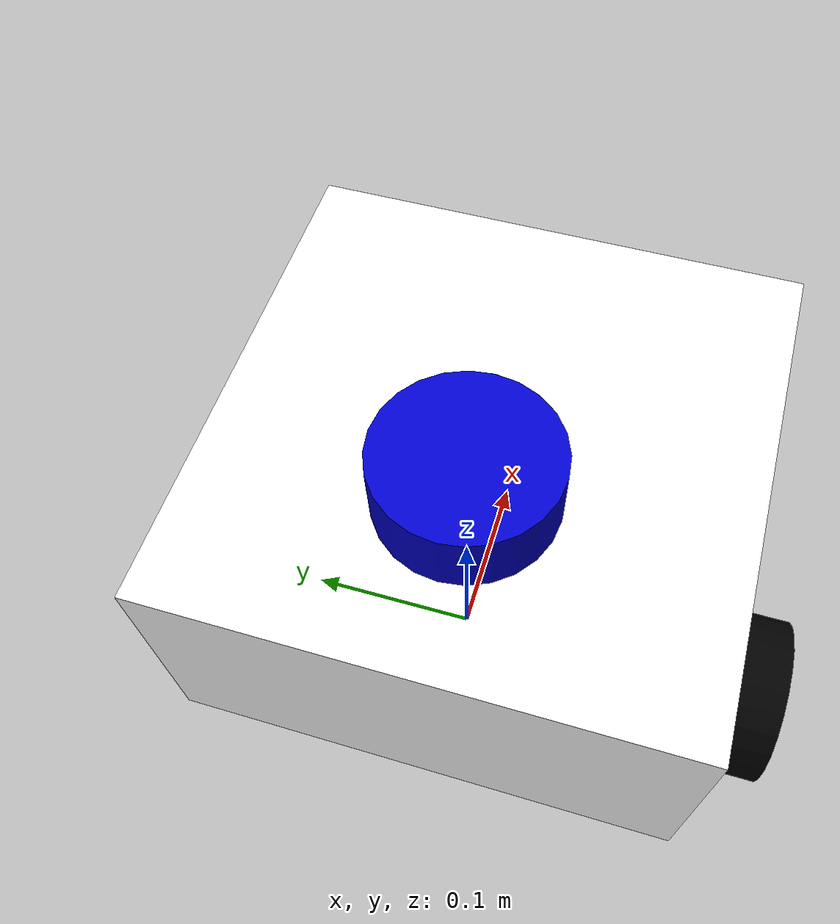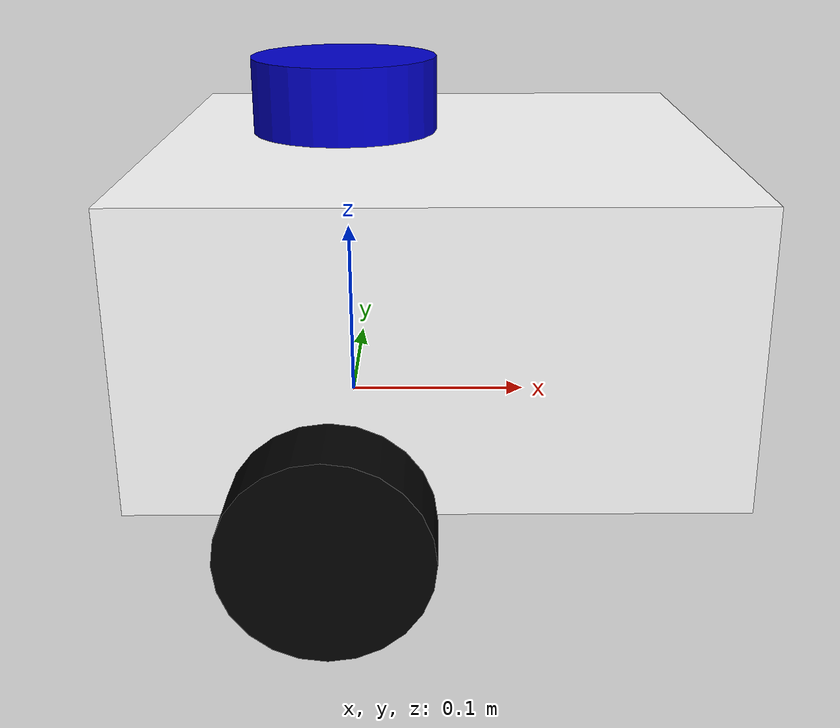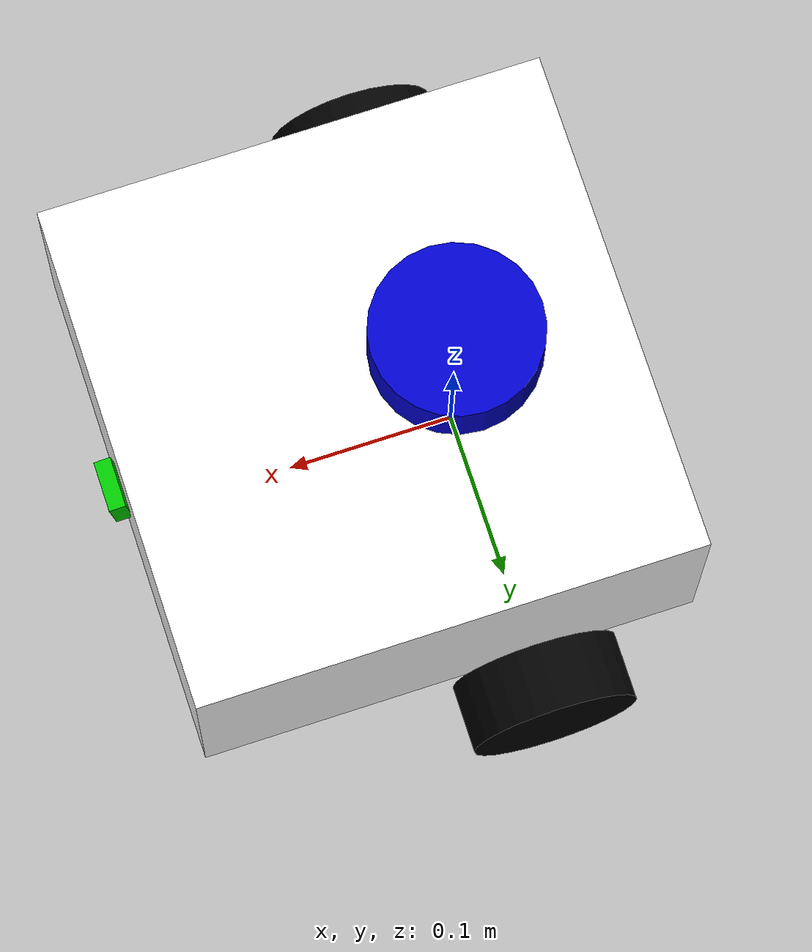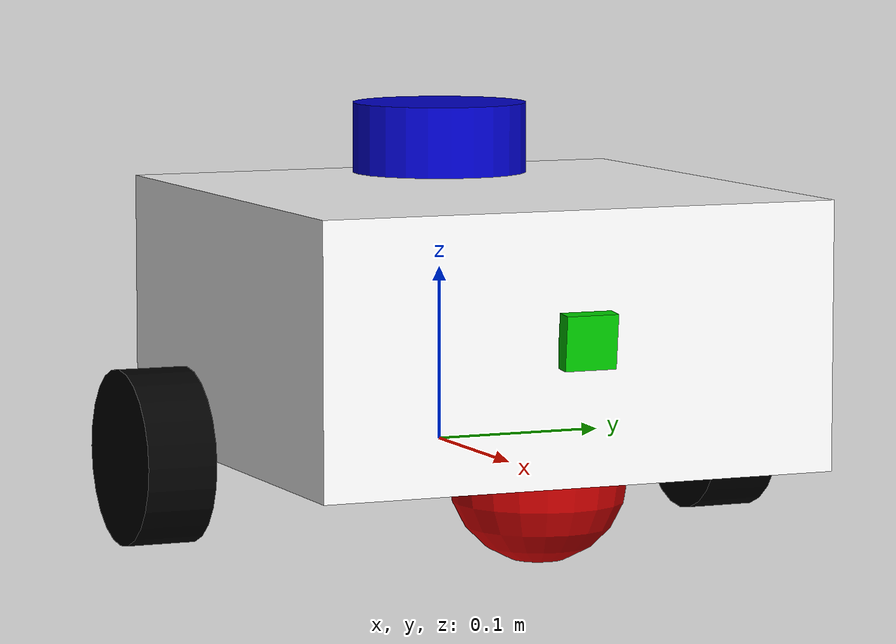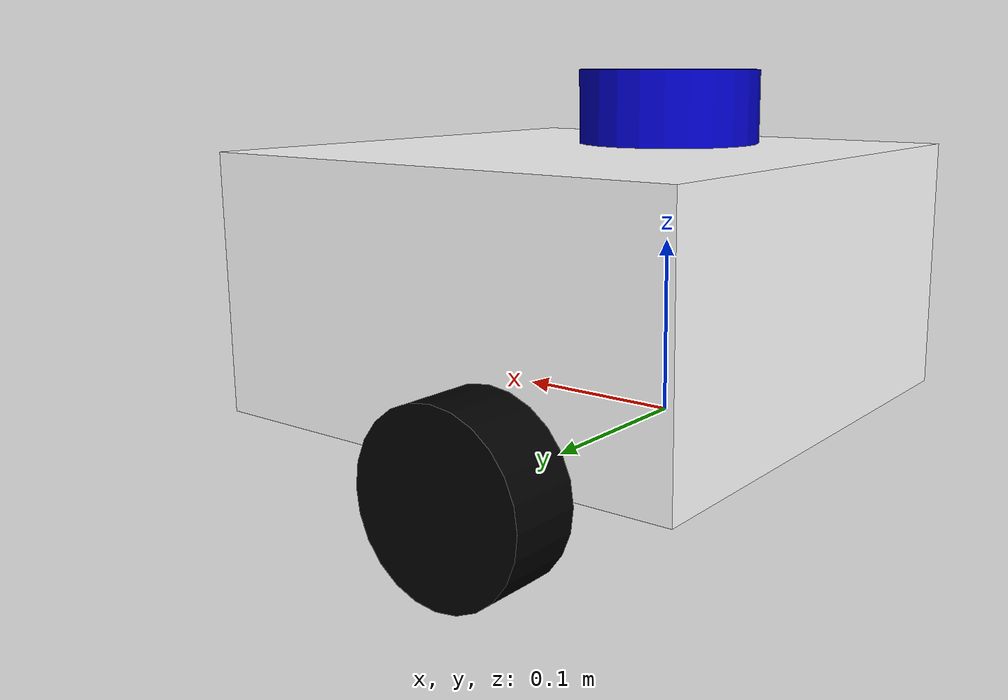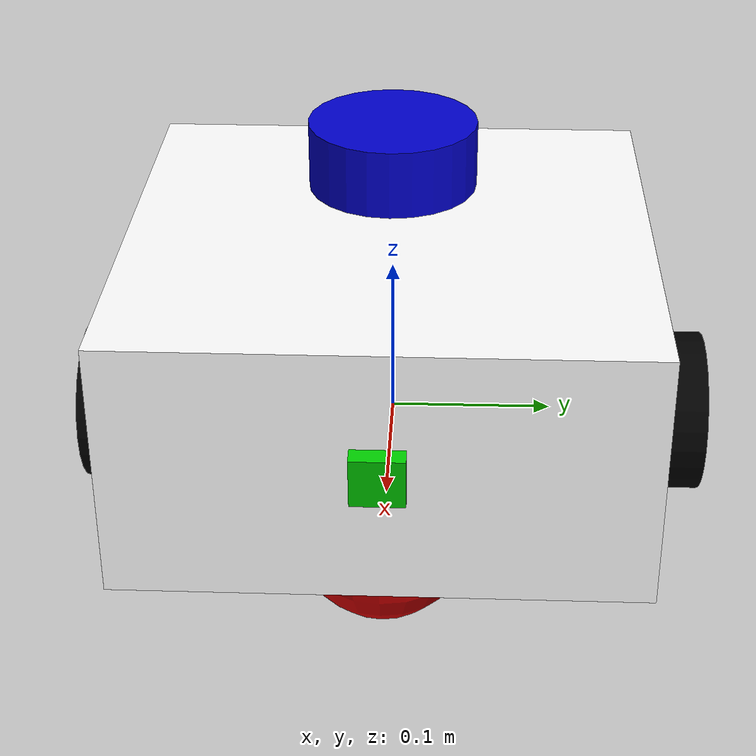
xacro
<?xml version="1.0"?>
<robot xmlns:xacro="http://www.ros.org/wiki/xacro"  name="robot">

    <xacro:arg name="use_ros2_control" default="true" />
    <xacro:arg name="sim_mode" default="false" />

    <xacro:include filename="robot_core.xacro"/>

    <!-- conditional argument for choosing control method -->
    <xacro:if value="$(arg use_ros2_control)">
        <xacro:include filename="ros2_control.xacro"/>
    </xacro:if>

    <xacro:unless value="$(arg use_ros2_control)">
        <xacro:include filename="gazebo_control.xacro"/>
    </xacro:unless>

    <xacro:include filename="lidar.xacro"/>

    <xacro:include filename="camera.xacro"/>

</robot>

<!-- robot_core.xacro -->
<robot xmlns:xacro="http://www.ros.org/wiki/xacro">

    <xacro:include filename="inertial_macros.xacro"/>

    <!-- Example materials -->
    <!-- here material, color are called tags -->
    <material name="blue">
        <color rgba="0 0 0.8 1"/>
    </material>

    <material name="red">
        <color rgba="0.8 0 0 1"/>
    </material>

    <material name="green">
        <color rgba="0 0.8 0 1"/>
    </material>

    <material name="gray">
        <color rgba="0.5 0.5 0.5 1"/>
    </material>

    <material name="black">
        <color rgba="0 0 0 1"/>
    </material>

    <material name="white">
        <color rgba="1 1 1 1"/>
    </material>

    <!-- Base link -->
    <link name = "base_link">
    <!-- Here base link is axle between drive wheels -->

    </link>

    <joint name = "base_footprint_joint" type="fixed">
        <parent link="base_link"/>
        <child link="base_footprint"/>
        <origin xyz="0 0 0" rpy="0 0 0"/>
    </joint>

    <link name = "base_footprint">
    </link>

    <!-- Chassis link -->
    <joint name = "chassis_joint" type="fixed">
        <parent link="base_link"/>
        <child link="chassis"/>
        <origin xyz="-0.1 0 0"/>
    </joint>

    <link name = "chassis">
        <visual>
            <origin xyz="0.15 0 0.075"/>
            <geometry>
                <box size= "0.3 0.3 0.15"/>
            </geometry>
            <material name="white"/>
        </visual>
        <collision>
            <origin xyz="0.15 0 0.075"/>
            <geometry>
                <box size= "0.3 0.3 0.15"/>
            </geometry>
        </collision>
        <xacro:inertial_box mass="0.5" x="0.3" y="0.3" z="0.15">
            <origin xyz="0.15 0 0.075"/>
        </xacro:inertial_box>
    </link>

    <gazebo reference="chassis">
        <material>Gazebo/White</material>
    </gazebo>

    <!-- Left Wheel -->
    <joint name = "left_wheel_joint" type="continuous">
        <parent link="base_link"/>
        <child link="left_wheel"/>
        <origin xyz="0 0.175 0" rpy="0 0 -${pi/2}"/>
        <axis xyz="-1 0 0"/>
    </joint>

    <link name = "left_wheel">
        <visual>
            <origin xyz="0 0 0" rpy="0 1.5708 0"/>
            <geometry>
                <cylinder radius="0.05" length="0.04"/>
            </geometry>
            <material name="black"/>
        </visual>
        <collision>
            <origin xyz="0 0 0" rpy="0 1.5708 0"/>
            <geometry>
                <sphere radius="0.05"/>
            </geometry>
        </collision>
        <xacro:inertial_cylinder mass="0.1" length="0.04" radius="0.05">
            <origin xyz="0 0 0"/>
        </xacro:inertial_cylinder>
    </link>
    <gazebo reference="left_wheel">
        <material>Gazebo/Black</material>
    </gazebo>

    <!-- Right Wheel -->
    <joint name = "right_wheel_joint" type="continuous">
        <parent link="base_link"/>
        <child link="right_wheel"/>
        <origin xyz="0 -0.175 0" rpy="0 0 ${pi/2}"/>
        <axis xyz="1 0 0"/>
    </joint>

    <link name = "right_wheel">
        <visual>
            <origin xyz="0 0 0" rpy="0 1.5708 0"/>
            <geometry>
                <cylinder radius="0.05" length="0.04"/>
            </geometry>
            <material name="black"/>
        </visual>
        <collision>
            <origin xyz="0 0 0" rpy="0 1.5708 0"/>
            <geometry>
                <sphere radius="0.05"/>
            </geometry>
        </collision>
        <xacro:inertial_cylinder mass="0.1" length="0.04" radius="0.05">
            <origin xyz="0 0 0"/>
        </xacro:inertial_cylinder>
    </link>
    <gazebo reference="right_wheel">
        <material>Gazebo/Black</material>
    </gazebo>

    <joint name="caster_wheel_joint" type="fixed">
        <parent link="chassis"/>
        <child link="caster_wheel"/>
        <origin xyz="0.24 0 0" />
    </joint>

    <link name="caster_wheel">
        <visual>
            <geometry>
                <sphere radius="0.05"/>
            </geometry>
            <material name="red"/>
        </visual>
        <collision>
            <geometry>
                <sphere radius="0.05"/>
            </geometry>
        </collision>
        <xacro:inertial_sphere mass="0.1" radius="0.05">
            <origin xyz="0 0 0"/>
        </xacro:inertial_sphere>
    </link>
    <gazebo reference="caster_wheel">
        <material>Gazebo/Red</material>
        <mu1 value = "0.001"/>
        <mu2 value = "0.001"/>
    </gazebo>

</robot>

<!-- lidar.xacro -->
<robot xmlns:xacro="http://www.ros.org/wiki/xacro">

    <joint name="laser_joint" type="fixed">
        <parent link="chassis"/>
        <child link="laser_frame"/>
        <origin xyz="0.1 0 0.175" rpy="0 0 0"/>
    </joint>

    <link name="laser_frame">
        <visual>
            <origin xyz="0 0 0" rpy="0 0 0"/>
            <geometry>
                <cylinder radius="0.05" length="0.04"/>
            </geometry>
            <material name="blue"/>
        </visual>
        <collision>
            <origin xyz="0 0 0" rpy="0 0 0"/>
            <geometry>
                <cylinder length="0.04" radius="0.05"/>
            </geometry>
        </collision>
        <xacro:inertial_cylinder mass="0.1" radius="0.05" length="0.04">
            <origin xyz="0 0 0" rpy="0 0 0"/>
        </xacro:inertial_cylinder>
    </link>

    <gazebo reference="laser_frame">
        <material>Gazebo/Blue</material>

        <sensor name="laser" type="ray">
            <pose> 0 0 0 0 0 0 </pose>
            <visualize>true</visualize>
            <update_rate>10</update_rate>
            <ray>
                <scan>
                    <horizontal>
                        <samples>360</samples>
                        <min_angle>-3.14</min_angle>
                        <max_angle>3.14</max_angle>
                    </horizontal>
                </scan>
                <range>
                    <min>0.3</min>
                    <max>12</max>
                </range>
            </ray>
            <plugin name="laser_controller" filename="libgazebo_ros_ray_sensor.so">
                <ros>
                    <argument>~/out:=scan</argument>
                </ros>
                <output_type>sensor_msgs/LaserScan</output_type>
                <frame_name>laser_frame</frame_name>
            </plugin>
        </sensor>
    </gazebo>

</robot>

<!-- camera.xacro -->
<robot xmlns:xacro="http://www.ros.org/wiki/xacro">

    <joint name="camera_joint" type="fixed">
        <parent link="chassis"/>
        <child link="camera_link"/>
        <origin xyz="0.305 0 0.08" rpy="0 0.1 0"/>
    </joint>

    <link name="camera_link">
        <visual>
            <origin xyz="0 0 0" rpy="0 0 0"/>
            <geometry>
                <box size = "0.010 0.03 0.03"/>
            </geometry>
            <material name="green"/>
        </visual>
    </link>

    <!-- Extra link to convert coordinate system from camera
    sensor to optical system-->
    <joint name="camera_optical_joint" type="fixed">
        <parent link="camera_link"/>
        <child link="camera_link_optical"/>
        <origin xyz="0 0 0" rpy="${-pi/2} 0 ${-pi/2}"/>
    </joint>

    <link name="camera_link_optical">
    </link>

    <gazebo reference="camera_link">
        <material>Gazebo/Green</material>

        <sensor name="camera" type="camera">
            <pose> 0 0 0 0 0 0 </pose>
            <visualize>true</visualize>
            <update_rate>10</update_rate>
            <camera>
                <horizontal_fov>1.089</horizontal_fov>
                <image>
                    <width>640</width>
                    <height>480</height>
                    <format>R8G8B8</format>
                </image>
                <clip>
                    <near>0.1</near>
                    <far>100</far>
                </clip>
            </camera>
            <plugin name="camera_controller" filename="libgazebo_ros_camera.so">
                <frame_name>camera_link_optical</frame_name> <!-- Use the optical frame to upload -->
            </plugin>
        </sensor>
    </gazebo>

</robot>
